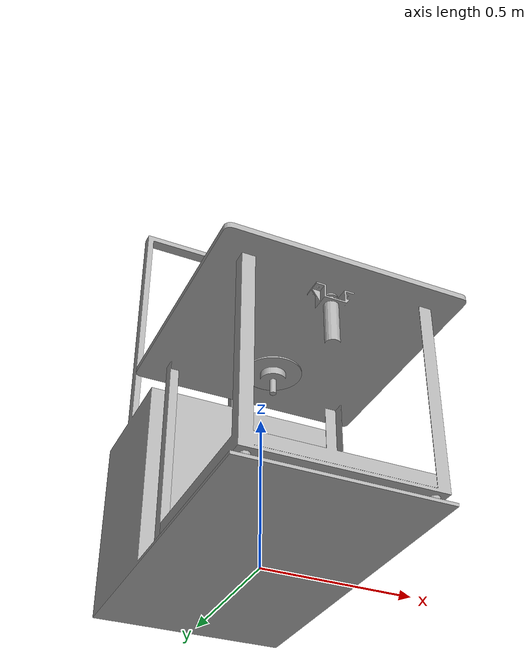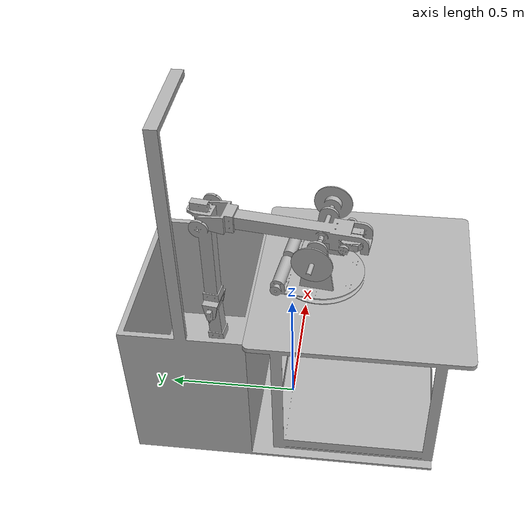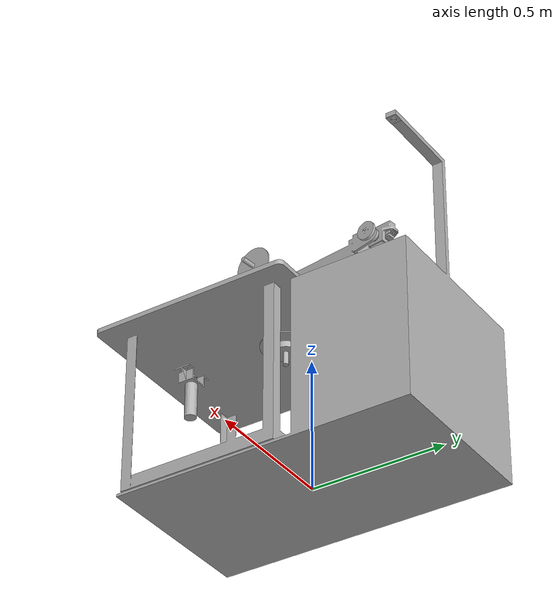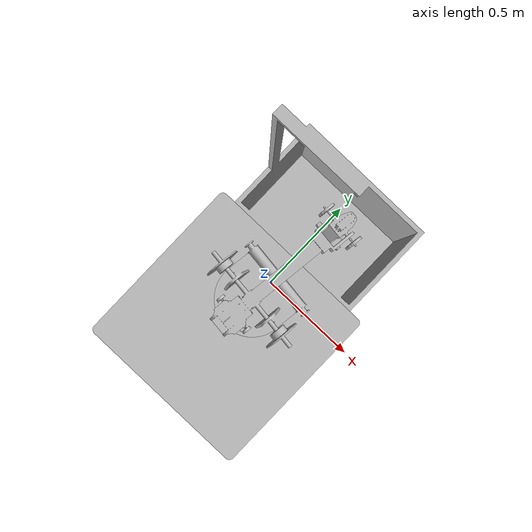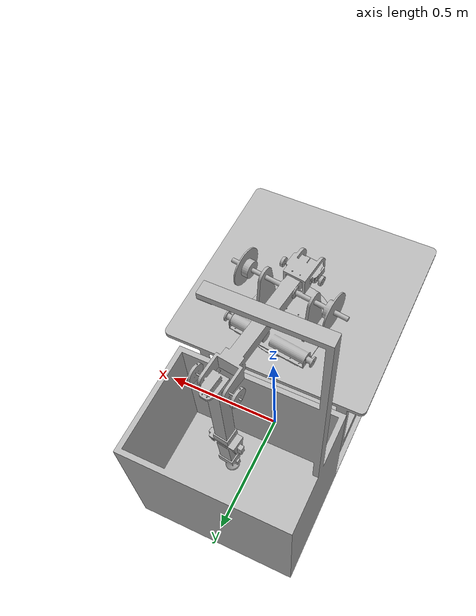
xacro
<?xml version="1.0" ?>
<robot name="da_vincibot" xmlns:xacro="http://www.ros.org/wiki/xacro">

<xacro:include filename="$(find da_vincibot_description)/urdf/materials.xacro" />
<xacro:include filename="$(find da_vincibot_description)/urdf/da_vincibot.trans" />
<xacro:include filename="$(find da_vincibot_description)/urdf/da_vincibot.gazebo" />
<link name="base_link">
  <inertial>
    <origin xyz="-0.013780680089318771 0.29685490907620005 0.1796297335203369" rpy="0 0 0"/>
    <mass value="35.9352"/>
    <inertia ixx="3.30678" iyy="3.232001" izz="3.200963" ixy="0.006439" iyz="-0.268124" ixz="0.135672"/>
  </inertial>
  <visual>
    <origin xyz="0 0 0" rpy="0 0 0"/>
    <geometry>
      <mesh filename="package://da_vincibot_description/meshes/base_link.stl" scale="0.001 0.001 0.001"/>
    </geometry>
    <material name="silver"/>
  </visual>
  <collision>
    <origin xyz="0 0 0" rpy="0 0 0"/>
    <geometry>
      <mesh filename="package://da_vincibot_description/meshes/base_link.stl" scale="0.001 0.001 0.001"/>
    </geometry>
  </collision>
</link>

<link name="arducam_v1_1">
  <inertial>
    <origin xyz="0.14958686829748946 0.00041841679008441934 -0.0021523835366652477" rpy="0 0 0"/>
    <mass value="0.0047707963267949235"/>
    <inertia ixx="0.0" iyy="0.0" izz="1e-06" ixy="0.0" iyz="0.0" ixz="0.0"/>
  </inertial>
  <visual>
    <origin xyz="0.159174 -0.339163 -1.41" rpy="0 0 0"/>
    <geometry>
      <mesh filename="package://da_vincibot_description/meshes/arducam_v1_1.stl" scale="0.001 0.001 0.001"/>
    </geometry>
    <material name="silver"/>
  </visual>
  <collision>
    <origin xyz="0.159174 -0.339163 -1.41" rpy="0 0 0"/>
    <geometry>
      <mesh filename="package://da_vincibot_description/meshes/arducam_v1_1.stl" scale="0.001 0.001 0.001"/>
    </geometry>
  </collision>
</link>

<link name="foundation_base_1">
  <inertial>
    <origin xyz="0.009586868297954467 -0.04216855497473093 0.47160422842803107" rpy="0 0 0"/>
    <mass value="118.48330496102017"/>
    <inertia ixx="13.892787" iyy="13.72668" izz="10.409594" ixy="-0.0" iyz="-0.004549" ixz="0.0"/>
  </inertial>
  <visual>
    <origin xyz="0.019174 0.220837 -0.01" rpy="0 0 0"/>
    <geometry>
      <mesh filename="package://da_vincibot_description/meshes/foundation_base_1.stl" scale="0.001 0.001 0.001"/>
    </geometry>
    <material name="silver"/>
  </visual>
  <collision>
    <origin xyz="0.019174 0.220837 -0.01" rpy="0 0 0"/>
    <geometry>
      <mesh filename="package://da_vincibot_description/meshes/foundation_base_1.stl" scale="0.001 0.001 0.001"/>
    </geometry>
  </collision>
</link>

<link name="shoulder_1">
  <inertial>
    <origin xyz="0.005405372319980582 0.041829381974803626 0.03665084928055473" rpy="0 0 0"/>
    <mass value="12.004176876206436"/>
    <inertia ixx="0.110864" iyy="0.131332" izz="0.147792" ixy="0.00269" iyz="-0.00568" ixz="-0.000734"/>
  </inertial>
  <visual>
    <origin xyz="0.009587 0.110419 -0.661" rpy="0 0 0"/>
    <geometry>
      <mesh filename="package://da_vincibot_description/meshes/shoulder_1.stl" scale="0.001 0.001 0.001"/>
    </geometry>
    <material name="silver"/>
  </visual>
  <collision>
    <origin xyz="0.009587 0.110419 -0.661" rpy="0 0 0"/>
    <geometry>
      <mesh filename="package://da_vincibot_description/meshes/shoulder_1.stl" scale="0.001 0.001 0.001"/>
    </geometry>
  </collision>
</link>

<link name="forearm_1">
  <inertial>
    <origin xyz="-0.08316200453723323 0.0587075718484109 0.0004308283777266775" rpy="0 0 0"/>
    <mass value="3.191348499369228"/>
    <inertia ixx="0.098878" iyy="0.031307" izz="0.127393" ixy="-0.008881" iyz="9.1e-05" ixz="1.2e-05"/>
  </inertial>
  <visual>
    <origin xyz="-0.079671 0.121953 -0.8545" rpy="0 0 0"/>
    <geometry>
      <mesh filename="package://da_vincibot_description/meshes/forearm_1.stl" scale="0.001 0.001 0.001"/>
    </geometry>
    <material name="silver"/>
  </visual>
  <collision>
    <origin xyz="-0.079671 0.121953 -0.8545" rpy="0 0 0"/>
    <geometry>
      <mesh filename="package://da_vincibot_description/meshes/forearm_1.stl" scale="0.001 0.001 0.001"/>
    </geometry>
  </collision>
</link>

<link name="hand_1">
  <inertial>
    <origin xyz="-0.04175972614489342 0.011082267709544569 -0.07871269739883513" rpy="0 0 0"/>
    <mass value="1.0665942147498997"/>
    <inertia ixx="0.024809" iyy="0.025832" izz="0.002087" ixy="0.000134" iyz="-0.000643" ixz="-8.3e-05"/>
  </inertial>
  <visual>
    <origin xyz="-0.083911 -0.300991 -0.8545" rpy="0 0 0"/>
    <geometry>
      <mesh filename="package://da_vincibot_description/meshes/hand_1.stl" scale="0.001 0.001 0.001"/>
    </geometry>
    <material name="silver"/>
  </visual>
  <collision>
    <origin xyz="-0.083911 -0.300991 -0.8545" rpy="0 0 0"/>
    <geometry>
      <mesh filename="package://da_vincibot_description/meshes/hand_1.stl" scale="0.001 0.001 0.001"/>
    </geometry>
  </collision>
</link>

<link name="hand_yaw_1">
  <inertial>
    <origin xyz="-2.875564365720229e-07 1.8486228126057824e-07 -0.030712893727246893" rpy="0 0 0"/>
    <mass value="0.19279513921054878"/>
    <inertia ixx="0.000118" iyy="0.000447" izz="0.000408" ixy="4.4e-05" iyz="-0.0" ixz="0.0"/>
  </inertial>
  <visual>
    <origin xyz="-0.041429 -0.306481 -0.4645" rpy="0 0 0"/>
    <geometry>
      <mesh filename="package://da_vincibot_description/meshes/hand_yaw_1.stl" scale="0.001 0.001 0.001"/>
    </geometry>
    <material name="silver"/>
  </visual>
  <collision>
    <origin xyz="-0.041429 -0.306481 -0.4645" rpy="0 0 0"/>
    <geometry>
      <mesh filename="package://da_vincibot_description/meshes/hand_yaw_1.stl" scale="0.001 0.001 0.001"/>
    </geometry>
  </collision>
</link>

<link name="end_effector_1">
  <inertial>
    <origin xyz="-0.02781603508937032 -0.003087956857066254 -0.1611964417463558" rpy="0 0 0"/>
    <mass value="0.49047145154717503"/>
    <inertia ixx="0.001938" iyy="0.001952" izz="0.000279" ixy="2e-06" iyz="-6.8e-05" ixz="-1.1e-05"/>
  </inertial>
  <visual>
    <origin xyz="-0.066218 -0.303239 -0.4086" rpy="0 0 0"/>
    <geometry>
      <mesh filename="package://da_vincibot_description/meshes/end_effector_1.stl" scale="0.001 0.001 0.001"/>
    </geometry>
    <material name="silver"/>
  </visual>
  <collision>
    <origin xyz="-0.066218 -0.303239 -0.4086" rpy="0 0 0"/>
    <geometry>
      <mesh filename="package://da_vincibot_description/meshes/end_effector_1.stl" scale="0.001 0.001 0.001"/>
    </geometry>
  </collision>
</link>

<joint name="rigid1" type="fixed">
  <origin xyz="-0.159174 0.339163 1.41" rpy="0 0 0"/>
  <parent link="base_link"/>
  <child link="arducam_v1_1"/>
</joint>

<joint name="rigid2" type="fixed">
  <origin xyz="-0.019174 -0.220837 0.01" rpy="0 0 0"/>
  <parent link="base_link"/>
  <child link="foundation_base_1"/>
</joint>

<joint name="joint1_shoulder" type="revolute">
  <origin xyz="0.009587 0.110418 0.651" rpy="0 0 0"/>
  <parent link="foundation_base_1"/>
  <child link="shoulder_1"/>
  <axis xyz="0.0 -0.0 1.0"/>
  <limit upper="4.712389" lower="0.0" effort="100" velocity="100"/>
</joint>

<joint name="joint2_forearm" type="revolute">
  <origin xyz="0.089258 -0.011534 0.1935" rpy="0 0 0"/>
  <parent link="shoulder_1"/>
  <child link="forearm_1"/>
  <axis xyz="-0.991753 0.128163 0.0"/>
  <limit upper="2.094395" lower="-0.0" effort="100" velocity="100"/>
</joint>

<joint name="joint3_hand" type="revolute">
  <origin xyz="0.00424 0.422944 0.0" rpy="0 0 0"/>
  <parent link="forearm_1"/>
  <child link="hand_1"/>
  <axis xyz="-0.991753 0.128163 0.0"/>
  <limit upper="1.396263" lower="0.0" effort="100" velocity="100"/>
</joint>

<joint name="joint4_handyaw" type="revolute">
  <origin xyz="-0.042482 0.00549 -0.39" rpy="0 0 0"/>
  <parent link="hand_1"/>
  <child link="hand_yaw_1"/>
  <axis xyz="0.0 -0.0 1.0"/>
  <limit upper="3.141593" lower="0.0" effort="100" velocity="100"/>
</joint>

<joint name="joint5_end" type="revolute">
  <origin xyz="0.024789 -0.003242 -0.0559" rpy="0 0 0"/>
  <parent link="hand_yaw_1"/>
  <child link="end_effector_1"/>
  <axis xyz="-0.991553 0.129701 -0.0"/>
  <limit upper="3.141593" lower="0.0" effort="100" velocity="100"/>
</joint>

</robot>

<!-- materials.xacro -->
<robot name="da_vincibot" xmlns:xacro="http://www.ros.org/wiki/xacro" >

<material name="silver">
  <color rgba="0.700 0.700 0.700 1.000"/>
</material>

</robot>

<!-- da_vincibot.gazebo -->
<robot name="da_vincibot" xmlns:xacro="http://www.ros.org/wiki/xacro" >

<xacro:property name="body_color" value="Gazebo/Silver" />

<gazebo>
  <plugin name="control" filename="libgazebo_ros_control.so"/>
</gazebo>
<gazebo reference="base_link">
  <material>${body_color}</material>
  <mu1>0.2</mu1>
  <mu2>0.2</mu2>
  <selfCollide>true</selfCollide>
  <gravity>true</gravity>
</gazebo>

<gazebo reference="arducam_v1_1">
  <material>${body_color}</material>
  <mu1>0.2</mu1>
  <mu2>0.2</mu2>
  <selfCollide>true</selfCollide>
</gazebo>

<gazebo reference="foundation_base_1">
  <material>${body_color}</material>
  <mu1>0.2</mu1>
  <mu2>0.2</mu2>
  <selfCollide>true</selfCollide>
</gazebo>

<gazebo reference="shoulder_1">
  <material>${body_color}</material>
  <mu1>0.2</mu1>
  <mu2>0.2</mu2>
  <selfCollide>true</selfCollide>
</gazebo>

<gazebo reference="forearm_1">
  <material>${body_color}</material>
  <mu1>0.2</mu1>
  <mu2>0.2</mu2>
  <selfCollide>true</selfCollide>
</gazebo>

<gazebo reference="hand_1">
  <material>${body_color}</material>
  <mu1>0.2</mu1>
  <mu2>0.2</mu2>
  <selfCollide>true</selfCollide>
</gazebo>

<gazebo reference="hand_yaw_1">
  <material>${body_color}</material>
  <mu1>0.2</mu1>
  <mu2>0.2</mu2>
  <selfCollide>true</selfCollide>
</gazebo>

<gazebo reference="end_effector_1">
  <material>${body_color}</material>
  <mu1>0.2</mu1>
  <mu2>0.2</mu2>
  <selfCollide>true</selfCollide>
</gazebo>

</robot>
